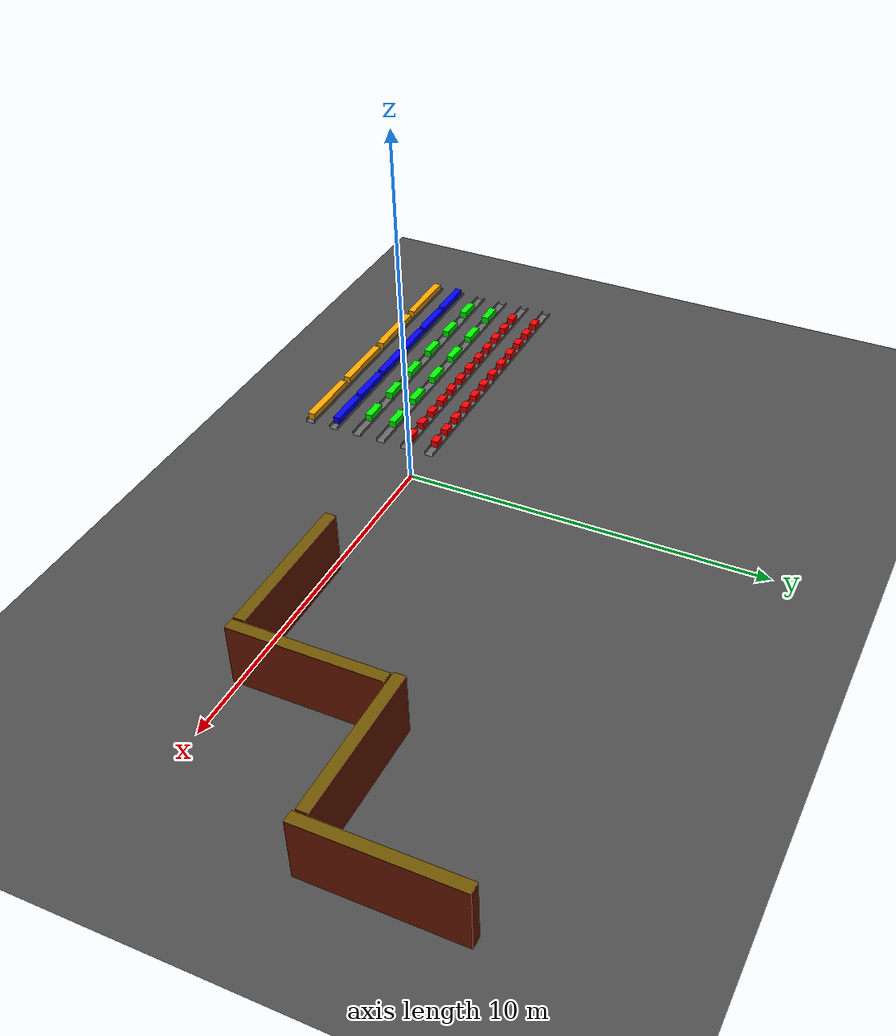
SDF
<?xml version="1.0" ?>
<sdf version='1.4'>
  <world name='default'>

    <physics type='ode'>
      <max_step_size>0.001</max_step_size>
      <real_time_factor>1</real_time_factor>
      <real_time_update_rate>1000</real_time_update_rate>
      <gravity>0 0 -9.8</gravity>
    </physics>

    <spherical_coordinates>
      <surface_model>EARTH_WGS84</surface_model>
      <latitude_deg>0</latitude_deg>
      <longitude_deg>0</longitude_deg>
      <elevation>0</elevation>
      <heading_deg>0</heading_deg>
    </spherical_coordinates>

    <!-- A global light source -->
   <scene>
      <sky>
        <clouds>
          <speed>12</speed>
        </clouds>
      </sky>
   </scene>

    <include>
      <uri>model://sun</uri>
    </include>

    <model name="ground_plane">
      <static>true</static>
      <link name="link">
        <collision name="collision">
          <geometry>
            <plane>
              <normal>0 0 1</normal>
              <size>100 100</size>
            </plane>
          </geometry>
          <surface>
            <friction>
              <ode>
                <mu>100</mu>
                <mu2>50</mu2>
              </ode>
            </friction>
          </surface>
        </collision>
        <visual name="visual">
          <cast_shadows>false</cast_shadows>
          <geometry>
            <plane>
              <normal>0 0 1</normal>
              <size>100 100</size>
            </plane>
          </geometry>
          <material>
            <script>
              <uri>model://asphalt_plane/materials/scripts</uri>
              <uri>model://asphalt_plane/materials/textures</uri>
              <name>vrc/asphalt</name>
            </script>
          </material>
        </visual>
      </link>
    </model>

    <model name="picking_place_1" >
      <pose>-5 0 0 0 0 0</pose>
      <include>
        <uri>model://uchannel_pick</uri>
      </include>
    </model>

    <model name="red_brick_1-1" >
      <pose>-1.5 0 0.15 1.57 0 1.57</pose>
      <include>
        <uri>model://red_brick</uri>
      </include>
    </model>

    <model name="red_brick_1-2" >
      <pose>-2.1 0 0.15 1.57 0 1.57</pose>
      <include>
        <uri>model://red_brick</uri>
      </include>
    </model>

    <model name="red_brick_1-3" >
      <pose>-2.7 0 0.15 1.57 0 1.57</pose>
      <include>
        <uri>model://red_brick</uri>
      </include>
    </model>

    <model name="red_brick_1-4" >
      <pose>-3.3 0 0.15 1.57 0 1.57</pose>
      <include>
        <uri>model://red_brick</uri>
      </include>
    </model>

    <model name="red_brick_1-5" >
      <pose>-3.9 0 0.15 1.57 0 1.57</pose>
      <include>
        <uri>model://red_brick</uri>
      </include>
    </model>

    <model name="red_brick_1-6" >
      <pose>-4.5 0 0.15 1.57 0 1.57</pose>
      <include>
        <uri>model://red_brick</uri>
      </include>
    </model>

    <model name="red_brick_1-7" >
      <pose>-5.1 0 0.15 1.57 0 1.57</pose>
      <include>
        <uri>model://red_brick</uri>
      </include>
    </model>

    <model name="red_brick_1-8" >
      <pose>-5.7 0 0.15 1.57 0 1.57</pose>
      <include>
        <uri>model://red_brick</uri>
      </include>
    </model>

    <model name="red_brick_1-9" >
      <pose>-6.3 0 0.15 1.57 0 1.57</pose>
      <include>
        <uri>model://red_brick</uri>
      </include>
    </model>

    <model name="red_brick_1-10" >
      <pose>-6.9 0 0.15 1.57 0 1.57</pose>
      <include>
        <uri>model://red_brick</uri>
      </include>
    </model>

    <model name="red_brick_1-11" >
      <pose>-7.5 0 0.15 1.57 0 1.57</pose>
      <include>
        <uri>model://red_brick</uri>
      </include>
    </model>

    <model name="red_brick_1-12" >
      <pose>-8.1 0 0.15 1.57 0 1.57</pose>
      <include>
        <uri>model://red_brick</uri>
      </include>
    </model>

    <model name="picking_place_2" >
      <pose>-5 -0.75 0 0 0 0</pose>
      <include>
        <uri>model://uchannel_pick</uri>
      </include>
    </model>

    <model name="red_brick_2-1" >
      <pose>-1.5 -0.75 0.15 1.57 0 1.57</pose>
      <include>
        <uri>model://red_brick</uri>
      </include>
    </model>

    <model name="red_brick_2-2" >
      <pose>-2.1 -0.75 0.15 1.57 0 1.57</pose>
      <include>
        <uri>model://red_brick</uri>
      </include>
    </model>

    <model name="red_brick_2-3" >
      <pose>-2.7 -0.75 0.15 1.57 0 1.57</pose>
      <include>
        <uri>model://red_brick</uri>
      </include>
    </model>

    <model name="red_brick_2-4" >
      <pose>-3.3 -0.75 0.15 1.57 0 1.57</pose>
      <include>
        <uri>model://red_brick</uri>
      </include>
    </model>

    <model name="red_brick_2-5" >
      <pose>-3.9 -0.75 0.15 1.57 0 1.57</pose>
      <include>
        <uri>model://red_brick</uri>
      </include>
    </model>

    <model name="red_brick_2-6" >
      <pose>-4.5 -0.75 0.15 1.57 0 1.57</pose>
      <include>
        <uri>model://red_brick</uri>
      </include>
    </model>

    <model name="red_brick_2-7" >
      <pose>-5.1 -0.75 0.15 1.57 0 1.57</pose>
      <include>
        <uri>model://red_brick</uri>
      </include>
    </model>

    <model name="red_brick_2-8" >
      <pose>-5.7 -0.75 0.15 1.57 0 1.57</pose>
      <include>
        <uri>model://red_brick</uri>
      </include>
    </model>

    <model name="red_brick_2-9" >
      <pose>-6.3 -0.75 0.15 1.57 0 1.57</pose>
      <include>
        <uri>model://red_brick</uri>
      </include>
    </model>

    <model name="red_brick_2-10" >
      <pose>-6.9 -0.75 0.15 1.57 0 1.57</pose>
      <include>
        <uri>model://red_brick</uri>
      </include>
    </model>

    <model name="red_brick_2-11" >
      <pose>-7.5 -0.75 0.15 1.57 0 1.57</pose>
      <include>
        <uri>model://red_brick</uri>
      </include>
    </model>

    <model name="red_brick_2-12" >
      <pose>-8.1 -0.75 0.15 1.57 0 1.57</pose>
      <include>
        <uri>model://red_brick</uri>
      </include>
    </model>

    <model name="picking_place_3" >
      <pose>-5 -1.5 0 0 0 0</pose>
      <include>
        <uri>model://uchannel_pick</uri>
      </include>
    </model>

    <model name="green_brick_1-1" >
      <pose>-2.0 -1.5 0.15 1.57 0 1.57</pose>
      <include>
        <uri>model://green_brick</uri>
      </include>
    </model>

    <model name="green_brick_1-2" >
      <pose>-3.2 -1.5 0.15 1.57 0 1.57</pose>
      <include>
        <uri>model://green_brick</uri>
      </include>
    </model>

    <model name="green_brick_1-3" >
      <pose>-4.4 -1.5 0.15 1.57 0 1.57</pose>
      <include>
        <uri>model://green_brick</uri>
      </include>
    </model>

    <model name="green_brick_1-4" >
      <pose>-5.6 -1.5 0.15 1.57 0 1.57</pose>
      <include>
        <uri>model://green_brick</uri>
      </include>
    </model>

    <model name="green_brick_1-5" >
      <pose>-6.8 -1.5 0.15 1.57 0 1.57</pose>
      <include>
        <uri>model://green_brick</uri>
      </include>
    </model>

    <model name="green_brick_1-6" >
      <pose>-8.0 -1.5 0.15 1.57 0 1.57</pose>
      <include>
        <uri>model://green_brick</uri>
      </include>
    </model>

    <model name="picking_place_4" >
      <pose>-5 -2.25 0 0 0 0</pose>
      <include>
        <uri>model://uchannel_pick</uri>
      </include>
    </model>

    <model name="green_brick_2-1" >
      <pose>-2.0 -2.25 0.15 1.57 0 1.57</pose>
      <include>
        <uri>model://green_brick</uri>
      </include>
    </model>

    <model name="green_brick_2-2" >
      <pose>-3.2 -2.25 0.15 1.57 0 1.57</pose>
      <include>
        <uri>model://green_brick</uri>
      </include>
    </model>

    <model name="green_brick_2-3" >
      <pose>-4.4 -2.25 0.15 1.57 0 1.57</pose>
      <include>
        <uri>model://green_brick</uri>
      </include>
    </model>

    <model name="green_brick_2-4" >
      <pose>-5.6 -2.25 0.15 1.57 0 1.57</pose>
      <include>
        <uri>model://green_brick</uri>
      </include>
    </model>

    <model name="green_brick_2-5" >
      <pose>-6.8 -2.25 0.15 1.57 0 1.57</pose>
      <include>
        <uri>model://green_brick</uri>
      </include>
    </model>

    <model name="green_brick_2-6" >
      <pose>-8.0 -2.25 0.15 1.57 0 1.57</pose>
      <include>
        <uri>model://green_brick</uri>
      </include>
    </model>

    <model name="picking_place_5" >
      <pose>-5 -3.0 0 0 0 0</pose>
      <include>
        <uri>model://uchannel_pick</uri>
      </include>
    </model>

    <model name="blue_brick_1" >
      <pose>-1.8 -3.0 0.15 1.57 0 1.57</pose>
      <include>
        <uri>model://blue_brick</uri>
      </include>
    </model>

    <model name="blue_brick_2" >
      <pose>-3.1 -3.0 0.15 1.57 0 1.57</pose>
      <include>
        <uri>model://blue_brick</uri>
      </include>
    </model>

    <model name="blue_brick_3" >
      <pose>-4.4 -3.0 0.15 1.57 0 1.57</pose>
      <include>
        <uri>model://blue_brick</uri>
      </include>
    </model>

    <model name="blue_brick_4" >
      <pose>-5.7 -3.0 0.15 1.57 0 1.57</pose>
      <include>
        <uri>model://blue_brick</uri>
      </include>
    </model>

    <model name="blue_brick_5" >
      <pose>-7.0 -3.0 0.15 1.57 0 1.57</pose>
      <include>
        <uri>model://blue_brick</uri>
      </include>
    </model>

    <model name="blue_brick_6" >
      <pose>-8.3 -3.0 0.15 1.57 0 1.57</pose>
      <include>
        <uri>model://blue_brick</uri>
      </include>
    </model>

    <model name="picking_place_6" >
      <pose>-5 -3.75 0 0 0 0</pose>
      <include>
        <uri>model://uchannel_pick</uri>
      </include>
    </model>

    <model name="orange_brick_1" >
      <pose>-2 -3.75 0.15 1.57 0 1.57</pose>
      <include>
        <uri>model://orange_brick</uri>
      </include>
    </model>

    <model name="orange_brick_2" >
      <pose>-4 -3.75 0.15 1.57 0 1.57</pose>
      <include>
        <uri>model://orange_brick</uri>
      </include>
    </model>

    <model name="orange_brick_3" >
      <pose>-6 -3.75 0.15 1.57 0 1.57</pose>
      <include>
        <uri>model://orange_brick</uri>
      </include>
    </model>

    <model name="orange_brick_4" >
      <pose>-8 -3.75 0.15 1.57 0 1.57</pose>
      <include>
        <uri>model://orange_brick</uri>
      </include>
    </model>

    <model name="construct_place_1" >
      <pose>6 0 0 0 0 0</pose>
      <include>
        <uri>model://uchannel_place</uri>
      </include>
    </model>

    <model name="construct_place_2" >
      <pose>8.2 1.85 0 0 0 1.57</pose>
      <include>
        <uri>model://uchannel_place</uri>
      </include>
    </model>

    <model name="construct_place_3" >
      <pose>10.0 4.05 0 0 0 0</pose>
      <include>
        <uri>model://uchannel_place</uri>
      </include>
    </model>

    <model name="construct_place_4" >
      <pose>12.2 5.85 0 0 0 1.57</pose>
      <include>
        <uri>model://uchannel_place</uri>
      </include>
    </model>

  </world>
</sdf>

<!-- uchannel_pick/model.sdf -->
<sdf version="1.4">
  <model name='uchannel_pick'>
    <static>1</static>
    <link name='link'>
      <pose>0 0 0 0 0 0</pose>
      <collision name='collision'>
        <geometry>
          <mesh>
            <uri>model://uchannel_pick/mesh/uchannel_pick.dae</uri>
            <scale>1 1 1</scale>
          </mesh>
        </geometry>
      </collision>
      <visual name='visual'>
        <cast_shadows>1</cast_shadows>
        <transparency>0</transparency>
        <geometry>
          <mesh>
            <uri>model://uchannel_pick/mesh/uchannel_pick.dae</uri>
            <scale>1 1 1</scale>
          </mesh>
        </geometry>
      </visual>
    </link>
  </model>
</sdf>

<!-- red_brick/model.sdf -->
<sdf version="1.4">
  <model name='red_brick'>
    <pose>0 0 0 0 0 0</pose>
    <static>false</static>
    <link name='object_link'>
      <inertial>
        <mass>0.4744</mass>
        <inertia> <!-- inertias are tricky to compute -->
          <!-- http://gazebosim.org/tutorials?tut=inertia&cat=build_robot -->
          <ixx>0.01079</ixx>       <!-- for a box: ixx = 0.083 * mass * (y*y + z*z) -->
          <ixy>0.0</ixy>         <!-- for a box: ixy = 0 -->
          <ixz>0.0</ixz>         <!-- for a box: ixz = 0 -->
          <iyy>0.01079</iyy>       <!-- for a box: iyy = 0.083 * mass * (x*x + z*z) -->
          <iyz>0.0</iyz>         <!-- for a box: iyz = 0 -->
          <izz>0.00664</izz>       <!-- for a box: izz = 0.083 * mass * (x*x + y*y) -->
        </inertia>
      </inertial>
      <collision name='collision'>
        <geometry>
          <box>
            <size>0.2 0.2 0.3</size>
          </box>
        </geometry>
        <max_contacts>50</max_contacts>
        <surface>
          <friction>
            <ode>
              <mu>1.5</mu>
              <mu2>1.5</mu2>
              <fdir>1 0 0</fdir>
            </ode>
          </friction>
          <contact>
            <ode>
              <kp>1400000.0</kp>
              <kd>2800.0</kd>
              <maxVel>10.0</maxVel>
              <minDepth>0.00</minDepth>
            </ode>
          </contact>
        </surface>
      </collision>
      <visual name='visual'>
        <geometry>
          <box>
            <size>0.2 0.2 0.3</size>
          </box>
        </geometry>
        <material>
          <ambient>1.0 0.0 0.0 1</ambient>
          <diffuse>1.0 0.0 0.0 1</diffuse>
          <specular>0.01 0.01 0.01 1</specular>
          <emissive>0 0 0 1</emissive>
        </material>
      </visual>
      <self_collide>0</self_collide>
      <kinematic>0</kinematic>
      <gravity>1</gravity>
    </link>
  </model>
</sdf>

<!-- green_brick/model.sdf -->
<sdf version="1.4">
  <model name='green_brick'>
    <pose>0 0 0 0 0 0</pose>
    <static>false</static>
    <link name='object_link'>
      <inertial>
        <mass>0.6994</mass>
        <inertia> <!-- inertias are tricky to compute -->
          <!-- http://gazebosim.org/tutorials?tut=inertia&cat=build_robot -->
          <ixx>0.0332</ixx>       <!-- for a box: ixx = 0.083 * mass * (y*y + z*z) -->
          <ixy>0.0</ixy>         <!-- for a box: ixy = 0 -->
          <ixz>0.0</ixz>         <!-- for a box: ixz = 0 -->
          <iyy>0.0332</iyy>       <!-- for a box: iyy = 0.083 * mass * (x*x + z*z) -->
          <iyz>0.0</iyz>         <!-- for a box: iyz = 0 -->
          <izz>0.00664</izz>       <!-- for a box: izz = 0.083 * mass * (x*x + y*y) -->
        </inertia>
      </inertial>
      <collision name='collision'>
        <geometry>
          <box>
            <size>0.2 0.2 0.6</size>
          </box>
        </geometry>
        <max_contacts>50</max_contacts>
        <surface>
          <friction>
            <ode>
              <mu>1.5</mu>
              <mu2>1.5</mu2>
              <fdir>1 0 0</fdir>
            </ode>
          </friction>
          <contact>
            <ode>
              <kp>1400000.0</kp>
              <kd>2800.0</kd>
              <maxVel>10.0</maxVel>
              <minDepth>0.00</minDepth>
            </ode>
          </contact>
        </surface>
      </collision>
      <visual name='visual'>
        <cast_shadows>0</cast_shadows>
        <geometry>
          <box>
            <size>0.2 0.2 0.6</size>
          </box>
        </geometry>
        <material>
          <ambient>0.0 1.0 0.0 1</ambient>
          <diffuse>0.0 1.0 0.0 1</diffuse>
          <specular>0.01 0.01 0.01 1</specular>
          <emissive>0 0 0 1</emissive>
        </material>
      </visual>
      <self_collide>0</self_collide>
      <kinematic>0</kinematic>
      <gravity>1</gravity>
    </link>
  </model>
</sdf>

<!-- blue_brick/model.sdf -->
<sdf version="1.4">
  <model name='blue_brick'>
    <pose>0 0 0 0 0 0</pose>
    <static>false</static>
    <link name='object_link'>
      <inertial>
        <mass>1.5</mass>
        <inertia> <!-- inertias are tricky to compute -->
          <!-- http://gazebosim.org/tutorials?tut=inertia&cat=build_robot -->
          <ixx>0.18426</ixx>       <!-- for a box: ixx = 0.083 * mass * (y*y + z*z) -->
          <ixy>0.0</ixy>         <!-- for a box: ixy = 0 -->
          <ixz>0.0</ixz>         <!-- for a box: ixz = 0 -->
          <iyy>0.18426</iyy>       <!-- for a box: iyy = 0.083 * mass * (x*x + z*z) -->
          <iyz>0.0</iyz>         <!-- for a box: iyz = 0 -->
          <izz>0.01</izz>       <!-- for a box: izz = 0.083 * mass * (x*x + y*y) -->
        </inertia>
      </inertial>
      <collision name='collision'>
        <geometry>
          <box>
            <size>0.2 0.2 1.2</size>
          </box>
        </geometry>
        <max_contacts>10</max_contacts>
        <surface>
          <friction>
            <ode>
              <mu>0.3</mu>
              <mu2>0.3</mu2>
            </ode>
          </friction>
        </surface>
      </collision>
      <visual name='visual'>
        <cast_shadows>0</cast_shadows>
        <geometry>
          <box>
            <size>0.2 0.2 1.2</size>
          </box>
        </geometry>
        <material>
          <ambient>0.0 0.0 1.0 1</ambient>
          <diffuse>0.0 0.0 1.0 1</diffuse>
          <specular>0.01 0.01 0.01 1</specular>
          <emissive>0 0 0 1</emissive>
        </material>
      </visual>
      <self_collide>0</self_collide>
      <kinematic>0</kinematic>
      <gravity>1</gravity>
    </link>
  </model>
</sdf>

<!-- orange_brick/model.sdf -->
<sdf version="1.4">
  <model name='orange_brick'>
    <pose>0 0 0 0 0 0</pose>
    <static>false</static>
    <link name='object_link'>
      <inertial>
        <mass>2.0</mass>
        <inertia> <!-- inertias are tricky to compute -->
          <!-- http://gazebosim.org/tutorials?tut=inertia&cat=build_robot -->
          <ixx>0.54448</ixx>       <!-- for a box: ixx = 0.083 * mass * (y*y + z*z) -->
          <ixy>0.0</ixy>         <!-- for a box: ixy = 0 -->
          <ixz>0.0</ixz>         <!-- for a box: ixz = 0 -->
          <iyy>0.54448</iyy>       <!-- for a box: iyy = 0.083 * mass * (x*x + z*z) -->
          <iyz>0.0</iyz>         <!-- for a box: iyz = 0 -->
          <izz>0.01328</izz>       <!-- for a box: izz = 0.083 * mass * (x*x + y*y) -->
        </inertia>
      </inertial>
      <collision name='collision'>
        <geometry>
          <box>
            <size>0.2 0.2 1.8</size>
          </box>
        </geometry>
        <max_contacts>10</max_contacts>
        <surface>
          <friction>
            <ode>
              <mu>0.3</mu>
              <mu2>0.3</mu2>
            </ode>
          </friction>
        </surface>
      </collision>
      <visual name='visual'>
        <cast_shadows>0</cast_shadows>
        <geometry>
          <box>
            <size>0.2 0.2 1.8</size>
          </box>
        </geometry>
        <material>
          <ambient>1.0 0.647 0.0 1</ambient>
          <diffuse>1.0 0.647 0.0 1</diffuse>
          <specular>0.01 0.01 0.01 1</specular>
          <emissive>0 0 0 1</emissive>
        </material>
      </visual>
      <self_collide>0</self_collide>
      <kinematic>0</kinematic>
      <gravity>1</gravity>
    </link>
  </model>
</sdf>

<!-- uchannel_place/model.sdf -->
<sdf version="1.4">
  <model name='uchannel_place'>
    <static>1</static>
    <link name='link'>
      <pose>0 0 0 0 0 0</pose>
      <collision name='collision'>
        <geometry>
          <mesh>
            <uri>model://uchannel_place/mesh/uchannel_place_collision.dae</uri>
            <scale>1 1 1</scale>
          </mesh>
        </geometry>
      </collision>
      <visual name='visual'>
        <cast_shadows>1</cast_shadows>
        <transparency>0</transparency>
        <geometry>
          <mesh>
            <uri>model://uchannel_place/mesh/uchannel_place_visual.dae</uri>
            <scale>1 1 1</scale>
          </mesh>
        </geometry>
      </visual>
    </link>
  </model>
</sdf>
